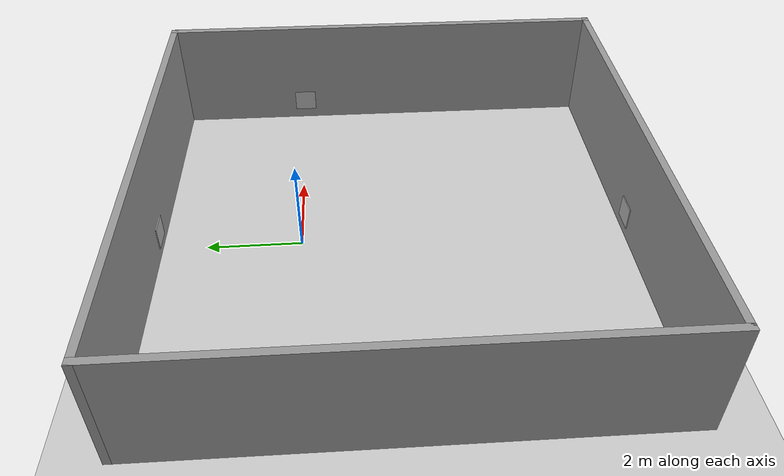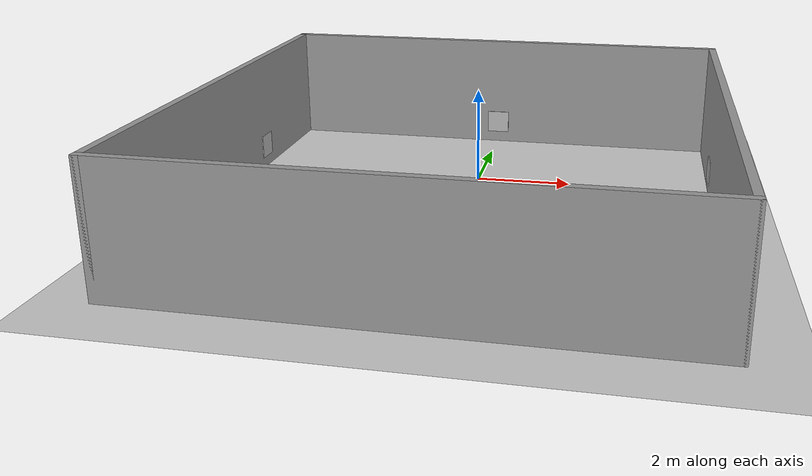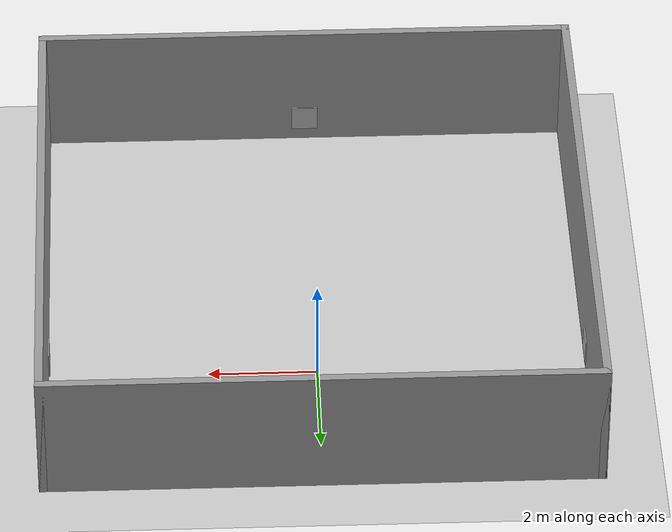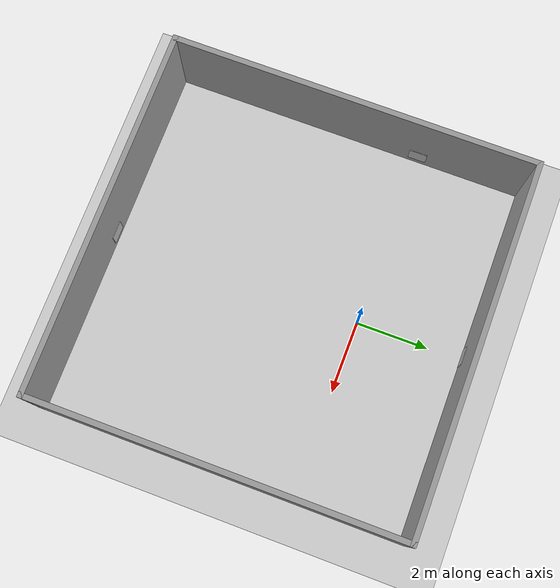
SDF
<sdf version="1.7">
 <world name="default">
  <light name="sun" type="directional">
   <pose>0 0 10 0 -0 0</pose>
   <diffuse>0.8 0.8 0.8 1</diffuse>
   <specular>0.2 0.2 0.2 1</specular>
   <attenuation>
    <range>1000</range>
    <constant>0.9</constant>
    <linear>0.01</linear>
    <quadratic>0.001</quadratic>
   </attenuation>
   <direction>-0.5 0.1 -0.9</direction>
   <spot><inner_angle>0</inner_angle><outer_angle>0</outer_angle><falloff>0</falloff></spot>
  </light>
  <model name="ground_plane">
   <static>1</static>
   <link name="link">
    <collision name="collision">
     <geometry><plane><normal>0 0 1</normal><size>100 100</size></plane></geometry>
     <surface>
      <contact><collide_bitmask>65535</collide_bitmask></contact>
      <friction><ode><mu>100</mu><mu2>50</mu2></ode></friction>
     </surface>
    </collision>
    <visual name="visual">
     <cast_shadows>0</cast_shadows>
     <geometry><plane><normal>0 0 1</normal><size>100 100</size></plane></geometry>
     <material>
      <script><uri>file://media/materials/scripts/gazebo.material</uri><name>Gazebo/Grey</name></script>
     </material>
    </visual>
   </link>
  </model>
  <gravity>0 0 -9.8</gravity>
  <magnetic_field>6e-06 2.3e-05 -4.2e-05</magnetic_field>
  <atmosphere type="adiabatic"/>
  <physics type="ode">
   <max_step_size>0.001</max_step_size>
   <real_time_factor>1</real_time_factor>
   <real_time_update_rate>1000</real_time_update_rate>
  </physics>
  <scene><ambient>0.4 0.4 0.4 1</ambient><background>0.7 0.7 0.7 1</background><shadows>1</shadows></scene>
  <audio><device>default</device></audio>
  <spherical_coordinates>
   <surface_model>EARTH_WGS84</surface_model>
   <latitude_deg>0</latitude_deg>
   <longitude_deg>0</longitude_deg>
   <elevation>0</elevation>
   <heading_deg>0</heading_deg>
  </spherical_coordinates>
  <model name="simple_room">
   <pose>0 -2 0 0 -0 0</pose>
   <link name="Wall_20">
    <collision name="Wall_20_Collision">
     <geometry><box><size>10.15 0.15 2.5</size></box></geometry>
     <pose>0 0 1.25 0 -0 0</pose>
    </collision>
    <visual name="Wall_20_Visual">
     <pose>0 0 1.25 0 -0 0</pose>
     <geometry><box><size>10.15 0.15 2.5</size></box></geometry>
     <material>
      <script><uri>file://media/materials/scripts/gazebo.material</uri><name>Gazebo/Grey</name></script>
      <ambient>1 1 1 1</ambient>
     </material>
     <meta><layer>0</layer></meta>
    </visual>
    <pose>-5 0 0 0 -0 -1.5708</pose>
   </link>
   <link name="Wall_22">
    <collision name="Wall_22_Collision">
     <geometry><box><size>10.15 0.15 2.5</size></box></geometry>
     <pose>0 0 1.25 0 -0 0</pose>
    </collision>
    <visual name="Wall_22_Visual">
     <pose>0 0 1.25 0 -0 0</pose>
     <geometry><box><size>10.15 0.15 2.5</size></box></geometry>
     <material>
      <script><uri>file://media/materials/scripts/gazebo.material</uri><name>Gazebo/Grey</name></script>
      <ambient>1 1 1 1</ambient>
     </material>
     <meta><layer>0</layer></meta>
    </visual>
    <pose>0 5 0 0 -0 0</pose>
   </link>
   <link name="Wall_24">
    <collision name="Wall_24_Collision">
     <geometry><box><size>10.15 0.15 2.5</size></box></geometry>
     <pose>0 0 1.25 0 -0 0</pose>
    </collision>
    <visual name="Wall_24_Visual">
     <pose>0 0 1.25 0 -0 0</pose>
     <geometry><box><size>10.15 0.15 2.5</size></box></geometry>
     <material>
      <script><uri>file://media/materials/scripts/gazebo.material</uri><name>Gazebo/Grey</name></script>
      <ambient>1 1 1 1</ambient>
     </material>
     <meta><layer>0</layer></meta>
    </visual>
    <pose>5 0 0 0 -0 -1.5708</pose>
   </link>
   <link name="Wall_29">
    <collision name="Wall_29_Collision">
     <geometry><box><size>10.15 0.15 2.5</size></box></geometry>
     <pose>0 0 1.25 0 -0 0</pose>
    </collision>
    <visual name="Wall_29_Visual">
     <pose>0 0 1.25 0 -0 0</pose>
     <geometry><box><size>10.15 0.15 2.5</size></box></geometry>
     <material>
      <script><uri>file://media/materials/scripts/gazebo.material</uri><name>Gazebo/Grey</name></script>
      <ambient>1 1 1 1</ambient>
     </material>
     <meta><layer>0</layer></meta>
    </visual>
    <pose>0 -5 0 0 -0 0</pose>
   </link>
   <static>1</static>
  </model>
  <include><uri>model://aruco_0</uri><pose>4.9 0 0.5 0 0 0</pose></include>
  <include><uri>model://aruco_1</uri><pose>0 2.9 0.5 0 0 1.57</pose></include>
  <include><uri>model://aruco_2</uri><pose>0 -6.9 0.5 0 0 -1.57</pose></include>
  <include><uri>model://aruco_3</uri><pose>-4.9 0 0.5 0 0 3.14</pose></include>
 </world>
</sdf>

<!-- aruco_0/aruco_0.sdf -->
<sdf version="1.7">
  <model name="aruco_0">
    <static>1</static>
    <link name="marker">
      <inertial>
        <mass>0.1</mass>
        <inertia>
          <ixx>0.000000</ixx>
          <ixy>0.000000</ixy>
          <ixz>0.000000</ixz>
          <iyy>0.000000</iyy>
          <iyz>0.000000</iyz>
          <izz>0.000000</izz>
        </inertia>
      </inertial>
      <visual name="visual">
        <geometry>
          <box>
            <size>0.02 0.5 0.5</size>
          </box>
        </geometry>
        <material>
          <script>
	    <uri>model://aruco_0/material/scripts</uri>
	    <uri>model://aruco_0/material/textures</uri>
            <name>Aruco/aruco_0</name>
          </script>
        </material>
      </visual>
      <collision name="collision">
        <geometry>
          <box>
            <size>0.02 0.5 0.5</size>
          </box>
        </geometry>
        <surface>
          <bounce />
          <friction>
            <ode />
          </friction>
          <contact>
            <ode />
          </contact>
        </surface>
      </collision>
      <self_collide>1</self_collide>
      <kinematic>0</kinematic>
      <gravity>0</gravity>
    </link>
  </model>
</sdf>

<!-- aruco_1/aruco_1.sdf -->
<sdf version="1.4">
  <model name="aruco_1">
    <static>1</static>
    <link name="marker">
      <inertial>
        <mass>0.1</mass>
        <inertia>
          <ixx>0.000000</ixx>
          <ixy>0.000000</ixy>
          <ixz>0.000000</ixz>
          <iyy>0.000000</iyy>
          <iyz>0.000000</iyz>
          <izz>0.000000</izz>
        </inertia>
      </inertial>
      <visual name="visual">
        <geometry>
          <box>
            <size>0.02 0.5 0.5</size>
          </box>
        </geometry>
        <material>
          <script>
	    <uri>model://aruco_1/material/scripts</uri>
	    <uri>model://aruco_1/material/textures</uri>
            <name>Aruco/aruco_1</name>
          </script>
        </material>
      </visual>
      <collision name="collision">
        <geometry>
          <box>
            <size>0.02 0.5 0.5</size>
          </box>
        </geometry>
        <surface>
          <bounce />
          <friction>
            <ode />
          </friction>
          <contact>
            <ode />
          </contact>
        </surface>
      </collision>
      <self_collide>1</self_collide>
      <kinematic>0</kinematic>
      <gravity>0</gravity>
    </link>
  </model>
</sdf>

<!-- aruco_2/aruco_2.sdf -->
<sdf version="1.4">
  <model name="aruco_2">
    <static>1</static>
    <link name="marker">
      <inertial>
        <mass>0.1</mass>
        <inertia>
          <ixx>0.000000</ixx>
          <ixy>0.000000</ixy>
          <ixz>0.000000</ixz>
          <iyy>0.000000</iyy>
          <iyz>0.000000</iyz>
          <izz>0.000000</izz>
        </inertia>
      </inertial>
      <visual name="visual">
        <geometry>
          <box>
            <size>0.02 0.5 0.5</size>
          </box>
        </geometry>
        <material>
          <script>
	    <uri>model://aruco_2/material/scripts</uri>
	    <uri>model://aruco_2/material/textures</uri>
            <name>Aruco/aruco_2</name>
          </script>
        </material>
      </visual>
      <collision name="collision">
        <geometry>
          <box>
            <size>0.02 0.5 0.5</size>
          </box>
        </geometry>
        <surface>
          <bounce />
          <friction>
            <ode />
          </friction>
          <contact>
            <ode />
          </contact>
        </surface>
      </collision>
      <self_collide>1</self_collide>
      <kinematic>0</kinematic>
      <gravity>0</gravity>
    </link>
  </model>
</sdf>

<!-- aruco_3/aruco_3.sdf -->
<sdf version="1.4">
  <model name="aruco_3">
    <static>1</static>
    <link name="marker">
      <inertial>
        <mass>0.1</mass>
        <inertia>
          <ixx>0.000000</ixx>
          <ixy>0.000000</ixy>
          <ixz>0.000000</ixz>
          <iyy>0.000000</iyy>
          <iyz>0.000000</iyz>
          <izz>0.000000</izz>
        </inertia>
      </inertial>
      <visual name="visual">
        <geometry>
          <box>
            <size>0.02 0.5 0.5</size>
          </box>
        </geometry>
        <material>
          <script>
	    <uri>model://aruco_3/material/scripts</uri>
	    <uri>model://aruco_3/material/textures</uri>
            <name>Aruco/aruco_3</name>
          </script>
        </material>
      </visual>
      <collision name="collision">
        <geometry>
          <box>
            <size>0.02 0.5 0.5</size>
          </box>
        </geometry>
        <surface>
          <bounce />
          <friction>
            <ode />
          </friction>
          <contact>
            <ode />
          </contact>
        </surface>
      </collision>
      <self_collide>1</self_collide>
      <kinematic>0</kinematic>
      <gravity>0</gravity>
    </link>
  </model>
</sdf>
